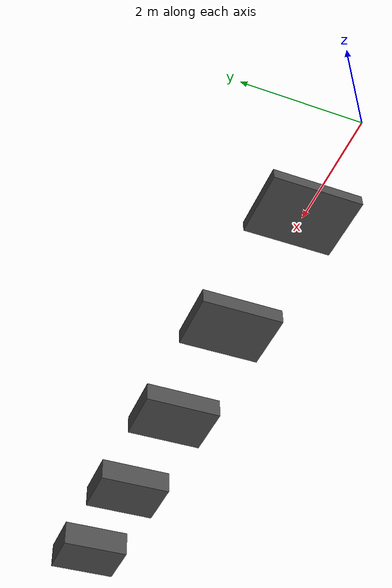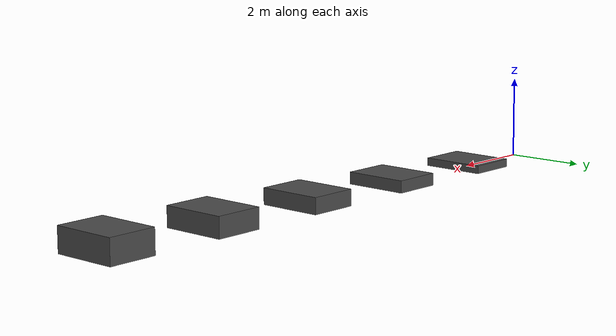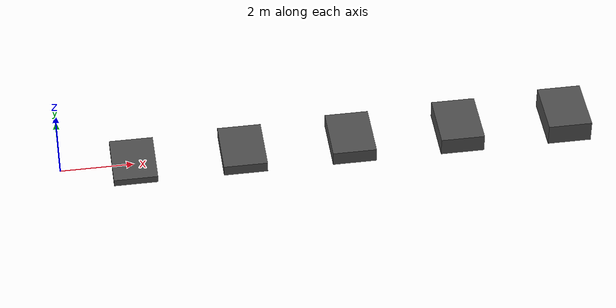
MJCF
<mujoco>
    <worldbody>
    <light diffuse="0.75 0.75 0.75" pos="0 0 5" dir="0 0 -1"/>
    <body pos="2 0 0.1">
      <geom type="box" size=".6 .8 0.1" rgba="0.3 0.3 0.3 1"/>
    </body>
  </worldbody>

  <worldbody>
      <light diffuse="0.75 0.75 0.75" pos="3 0 5" dir="0 0 -1"/>
    <body pos="5 0 0.15">
      <geom type="box" size=".6 .8 0.15" rgba="0.3 0.3 0.3 1"/>
    </body>
  </worldbody>

  <worldbody>
    <light diffuse="0.7 0.7 0.7" pos="7 0 5" dir="0 0 -1"/>
    <body pos="8 0 0.2">
      <geom type="box" size=".6 .8 0.2" rgba="0.3 0.3 0.3 1"/>
    </body>
  </worldbody>

    <worldbody>
    <light diffuse="0.7 0.7 0.7" pos="10 0 5" dir="0 0 -1"/>
    <body pos="11 0 0.25">
      <geom type="box" size=".6 .8 0.25" rgba="0.3 0.3 0.3 1"/>
    </body>
  </worldbody>

    <worldbody>
    <light diffuse="1 1 1" pos="5 0 5" dir="0 0 -1"/>
    <body pos="14 0 0.3">
      <geom type="box" size=".6 .8 0.3" rgba="0.3 0.3 0.3 1"/>
    </body>
  </worldbody>
</mujoco>
